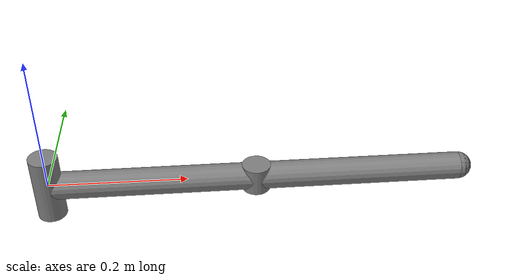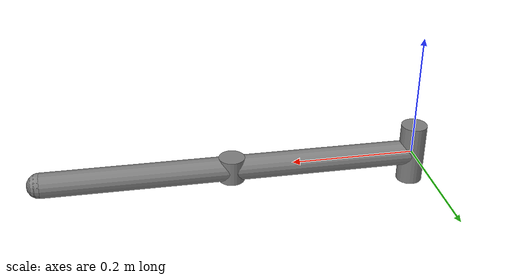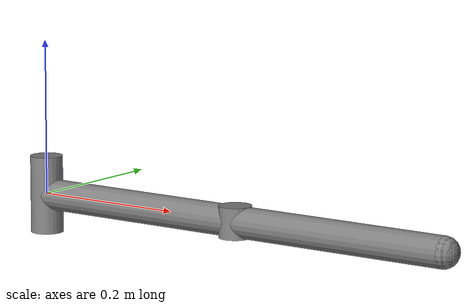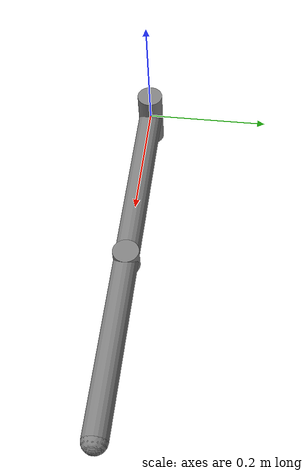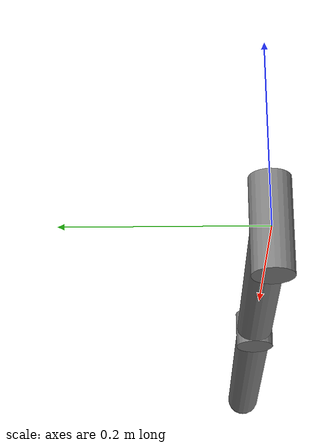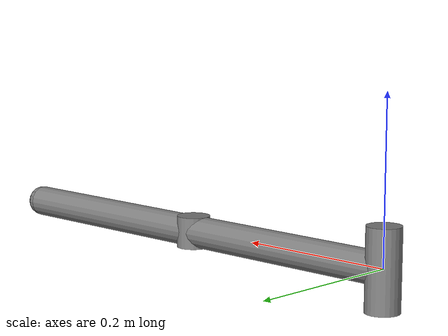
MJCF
<mujoco model="pendulum">
    <compiler angle="radian" inertiafromgeom="true"/>

    <option timestep="0.02">
        <flag contact="disable"/>
    </option>

    <default>
        <joint damping="0.05"/>
    </default>

    <worldbody>
        <light name="light" pos="0 0 2"/>
        <camera name="fixed" pos="0 -1.5 2" xyaxes='1 0 0 0 1 1'/>
        <camera name="lookat" mode="targetbodycom" target="link_1" pos="0 -2 1"/>
        <body name="link_1" pos="0 0 0">
            <joint name="hinge_1" type="hinge" axis="0 0 1" damping="0.1"/>
            <geom name="base" type="cylinder" quat="1 0 0 0" size="0.021 0.05" mass="0"/>
            <geom name="link_1_geom" type="capsule" pos="0.15 0 0" quat="1 0 1 0" size="0.02 0.15" mass="1"/>
            <body name="link_2" pos="0.3 0 0">
                <joint name="hinge_2" type="hinge" axis="0 0 1" damping="0.1"/>
                <geom name="hinge_geom" type="cylinder" quat="1 0 0 0" size="0.021 0.02" mass="0"/>
                <geom name="link_2_geom" type="capsule" pos="0.15 0 0" quat="1 0 1 0" size="0.02 0.15" mass="1"/>
                <site name="end_effector" type="sphere" size="0.02" pos="0.3 0 0"/>
            </body>
        </body>
    </worldbody>

    <actuator>
        <motor name="motor_1" joint="hinge_1" gear="1" ctrlrange="-1 1" ctrllimited="true"/>
        <motor name="motor_2" joint="hinge_2" gear="1" ctrlrange="-1 1" ctrllimited="true"/>
    </actuator>

</mujoco>
